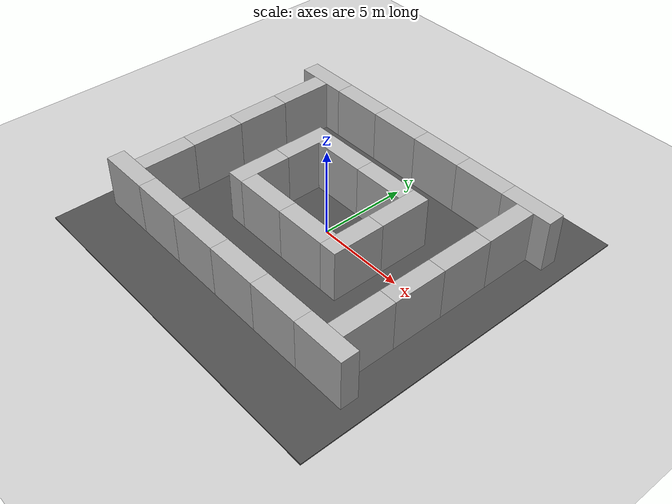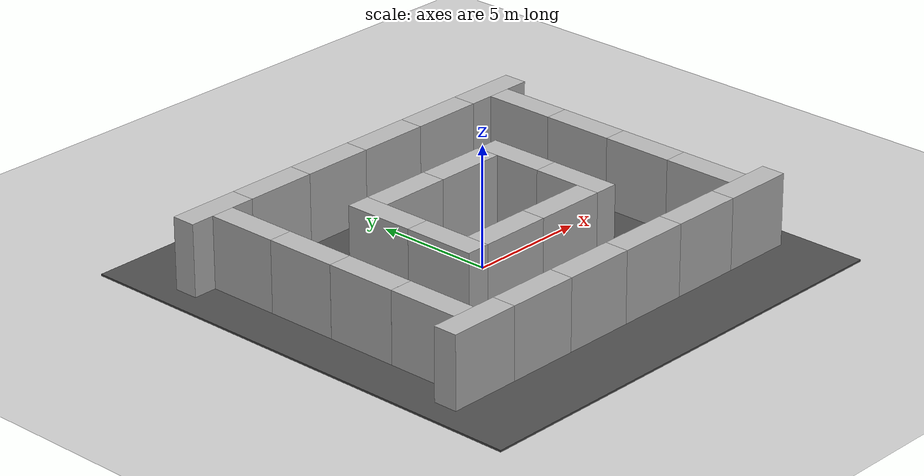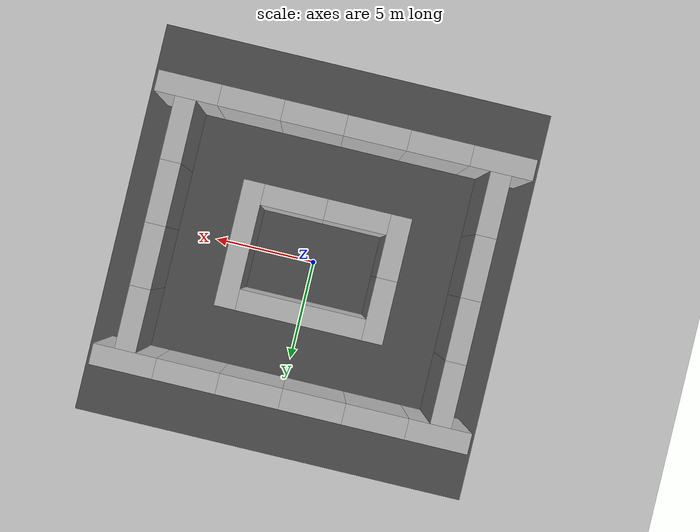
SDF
<sdf version="1.6">
 <world name="default">
  <model name="ground_plane">
   <static>1</static>
   <link name="link">
    <collision name="collision">
     <geometry><plane><normal>0 0 1</normal><size>100 100</size></plane></geometry>
     <surface><friction><ode><mu>100</mu><mu2>50</mu2></ode></friction></surface>
    </collision>
    <visual name="visual">
     <cast_shadows>0</cast_shadows>
     <geometry><plane><normal>0 0 1</normal><size>100 100</size></plane></geometry>
     <material>
      <script><uri>file://media/materials/scripts/gazebo.material</uri><name>Gazebo/Grey</name></script>
     </material>
    </visual>
    <velocity_decay><linear>0</linear><angular>0</angular></velocity_decay>
   </link>
  </model>
  <model name="asphalt_plane">
   <static>1</static>
   <link name="link">
    <collision name="collision"><geometry><box><size>20 20 0.1</size></box></geometry></collision>
    <visual name="visual">
     <cast_shadows>0</cast_shadows>
     <geometry><box><size>20 20 0.1</size></box></geometry>
     <material>
      <script>
       <uri>model://asphalt_plane/materials/scripts</uri>
       <uri>model://asphalt_plane/materials/textures</uri>
       <name>vrc/asphalt</name>
      </script>
     </material>
    </visual>
    <velocity_decay><linear>0</linear><angular>0</angular></velocity_decay>
   </link>
  </model>
  <model name="brick_box_3x1x3">
   <static>1</static>
   <link name="chassis">
    <pose>0 0 1.5 0 -0 0</pose>
    <collision name="collision"><geometry><box><size>3 1 3</size></box></geometry></collision>
    <visual name="visual">
     <geometry><mesh><uri>model://brick_box_3x1x3/meshes/simple_box.dae</uri><scale>3 1 3</scale></mesh></geometry>
     <material>
      <script>
       <uri>model://brick_box_3x1x3/materials/scripts</uri>
       <uri>model://brick_box_3x1x3/materials/textures</uri>
       <name>BrickBox/Diffuse</name>
      </script>
     </material>
    </visual>
   </link>
   <pose>3.5 1.5 0 0 -0 1.5708</pose>
  </model>
  <model name="brick_box_3x1x3_0">
   <static>1</static>
   <link name="chassis">
    <pose>0 0 1.5 0 -0 0</pose>
    <collision name="collision"><geometry><box><size>3 1 3</size></box></geometry></collision>
    <visual name="visual">
     <geometry><mesh><uri>model://brick_box_3x1x3/meshes/simple_box.dae</uri><scale>3 1 3</scale></mesh></geometry>
     <material>
      <script>
       <uri>model://brick_box_3x1x3/materials/scripts</uri>
       <uri>model://brick_box_3x1x3/materials/textures</uri>
       <name>BrickBox/Diffuse</name>
      </script>
     </material>
    </visual>
   </link>
   <pose>3.5 -1.5 0 0 -0 1.5708</pose>
  </model>
  <model name="brick_box_3x1x3_1">
   <static>1</static>
   <link name="chassis">
    <pose>0 0 1.5 0 -0 0</pose>
    <collision name="collision"><geometry><box><size>3 1 3</size></box></geometry></collision>
    <visual name="visual">
     <geometry><mesh><uri>model://brick_box_3x1x3/meshes/simple_box.dae</uri><scale>3 1 3</scale></mesh></geometry>
     <material>
      <script>
       <uri>model://brick_box_3x1x3/materials/scripts</uri>
       <uri>model://brick_box_3x1x3/materials/textures</uri>
       <name>BrickBox/Diffuse</name>
      </script>
     </material>
    </visual>
   </link>
   <pose>1.5 -2.5 0 0 -0 0</pose>
  </model>
  <model name="brick_box_3x1x3_2">
   <static>1</static>
   <link name="chassis">
    <pose>0 0 1.5 0 -0 0</pose>
    <collision name="collision"><geometry><box><size>3 1 3</size></box></geometry></collision>
    <visual name="visual">
     <geometry><mesh><uri>model://brick_box_3x1x3/meshes/simple_box.dae</uri><scale>3 1 3</scale></mesh></geometry>
     <material>
      <script>
       <uri>model://brick_box_3x1x3/materials/scripts</uri>
       <uri>model://brick_box_3x1x3/materials/textures</uri>
       <name>BrickBox/Diffuse</name>
      </script>
     </material>
    </visual>
   </link>
   <pose>-1.5 -2.5 0 0 -0 0</pose>
  </model>
  <model name="brick_box_3x1x3_3">
   <static>1</static>
   <link name="chassis">
    <pose>0 0 1.5 0 -0 0</pose>
    <collision name="collision"><geometry><box><size>3 1 3</size></box></geometry></collision>
    <visual name="visual">
     <geometry><mesh><uri>model://brick_box_3x1x3/meshes/simple_box.dae</uri><scale>3 1 3</scale></mesh></geometry>
     <material>
      <script>
       <uri>model://brick_box_3x1x3/materials/scripts</uri>
       <uri>model://brick_box_3x1x3/materials/textures</uri>
       <name>BrickBox/Diffuse</name>
      </script>
     </material>
    </visual>
   </link>
   <pose>-3.5 -1.5 0 0 -0 1.5708</pose>
  </model>
  <model name="brick_box_3x1x3_4">
   <static>1</static>
   <link name="chassis">
    <pose>0 0 1.5 0 -0 0</pose>
    <collision name="collision"><geometry><box><size>3 1 3</size></box></geometry></collision>
    <visual name="visual">
     <geometry><mesh><uri>model://brick_box_3x1x3/meshes/simple_box.dae</uri><scale>3 1 3</scale></mesh></geometry>
     <material>
      <script>
       <uri>model://brick_box_3x1x3/materials/scripts</uri>
       <uri>model://brick_box_3x1x3/materials/textures</uri>
       <name>BrickBox/Diffuse</name>
      </script>
     </material>
    </visual>
   </link>
   <pose>-3.5 1.5 0 0 -0 1.5708</pose>
  </model>
  <model name="brick_box_3x1x3_5">
   <static>1</static>
   <link name="chassis">
    <pose>0 0 1.5 0 -0 0</pose>
    <collision name="collision"><geometry><box><size>3 1 3</size></box></geometry></collision>
    <visual name="visual">
     <geometry><mesh><uri>model://brick_box_3x1x3/meshes/simple_box.dae</uri><scale>3 1 3</scale></mesh></geometry>
     <material>
      <script>
       <uri>model://brick_box_3x1x3/materials/scripts</uri>
       <uri>model://brick_box_3x1x3/materials/textures</uri>
       <name>BrickBox/Diffuse</name>
      </script>
     </material>
    </visual>
   </link>
   <pose>-1.5 2.5 0 0 -0 0</pose>
  </model>
  <model name="brick_box_3x1x3_6">
   <static>1</static>
   <link name="chassis">
    <pose>0 0 1.5 0 -0 0</pose>
    <collision name="collision"><geometry><box><size>3 1 3</size></box></geometry></collision>
    <visual name="visual">
     <geometry><mesh><uri>model://brick_box_3x1x3/meshes/simple_box.dae</uri><scale>3 1 3</scale></mesh></geometry>
     <material>
      <script>
       <uri>model://brick_box_3x1x3/materials/scripts</uri>
       <uri>model://brick_box_3x1x3/materials/textures</uri>
       <name>BrickBox/Diffuse</name>
      </script>
     </material>
    </visual>
   </link>
   <pose>1.5 2.5 0 0 -0 0</pose>
  </model>
  <model name="brick_box_3x1x3_7">
   <static>1</static>
   <link name="chassis">
    <pose>0 0 1.5 0 -0 0</pose>
    <collision name="collision"><geometry><box><size>3 1 3</size></box></geometry></collision>
    <visual name="visual">
     <geometry><mesh><uri>model://brick_box_3x1x3/meshes/simple_box.dae</uri><scale>3 1 3</scale></mesh></geometry>
     <material>
      <script>
       <uri>model://brick_box_3x1x3/materials/scripts</uri>
       <uri>model://brick_box_3x1x3/materials/textures</uri>
       <name>BrickBox/Diffuse</name>
      </script>
     </material>
    </visual>
   </link>
   <pose>7.5 4.5 0 0 -0 1.5708</pose>
  </model>
  <model name="brick_box_3x1x3_8">
   <static>1</static>
   <link name="chassis">
    <pose>0 0 1.5 0 -0 0</pose>
    <collision name="collision"><geometry><box><size>3 1 3</size></box></geometry></collision>
    <visual name="visual">
     <geometry><mesh><uri>model://brick_box_3x1x3/meshes/simple_box.dae</uri><scale>3 1 3</scale></mesh></geometry>
     <material>
      <script>
       <uri>model://brick_box_3x1x3/materials/scripts</uri>
       <uri>model://brick_box_3x1x3/materials/textures</uri>
       <name>BrickBox/Diffuse</name>
      </script>
     </material>
    </visual>
   </link>
   <pose>7.5 1.5 0 0 -0 1.5708</pose>
  </model>
  <model name="brick_box_3x1x3_9">
   <static>1</static>
   <link name="chassis">
    <pose>0 0 1.5 0 -0 0</pose>
    <collision name="collision"><geometry><box><size>3 1 3</size></box></geometry></collision>
    <visual name="visual">
     <geometry><mesh><uri>model://brick_box_3x1x3/meshes/simple_box.dae</uri><scale>3 1 3</scale></mesh></geometry>
     <material>
      <script>
       <uri>model://brick_box_3x1x3/materials/scripts</uri>
       <uri>model://brick_box_3x1x3/materials/textures</uri>
       <name>BrickBox/Diffuse</name>
      </script>
     </material>
    </visual>
   </link>
   <pose>7.5 -1.5 0 0 -0 1.5708</pose>
  </model>
  <model name="brick_box_3x1x3_10">
   <static>1</static>
   <link name="chassis">
    <pose>0 0 1.5 0 -0 0</pose>
    <collision name="collision"><geometry><box><size>3 1 3</size></box></geometry></collision>
    <visual name="visual">
     <geometry><mesh><uri>model://brick_box_3x1x3/meshes/simple_box.dae</uri><scale>3 1 3</scale></mesh></geometry>
     <material>
      <script>
       <uri>model://brick_box_3x1x3/materials/scripts</uri>
       <uri>model://brick_box_3x1x3/materials/textures</uri>
       <name>BrickBox/Diffuse</name>
      </script>
     </material>
    </visual>
   </link>
   <pose>7.5 -4.5 0 0 -0 1.5708</pose>
  </model>
  <model name="brick_box_3x1x3_11">
   <static>1</static>
   <link name="chassis">
    <pose>0 0 1.5 0 -0 0</pose>
    <collision name="collision"><geometry><box><size>3 1 3</size></box></geometry></collision>
    <visual name="visual">
     <geometry><mesh><uri>model://brick_box_3x1x3/meshes/simple_box.dae</uri><scale>3 1 3</scale></mesh></geometry>
     <material>
      <script>
       <uri>model://brick_box_3x1x3/materials/scripts</uri>
       <uri>model://brick_box_3x1x3/materials/textures</uri>
       <name>BrickBox/Diffuse</name>
      </script>
     </material>
    </visual>
   </link>
   <pose>7.5 -6.5 0 0 -0 0</pose>
  </model>
  <model name="brick_box_3x1x3_12">
   <static>1</static>
   <link name="chassis">
    <pose>0 0 1.5 0 -0 0</pose>
    <collision name="collision"><geometry><box><size>3 1 3</size></box></geometry></collision>
    <visual name="visual">
     <geometry><mesh><uri>model://brick_box_3x1x3/meshes/simple_box.dae</uri><scale>3 1 3</scale></mesh></geometry>
     <material>
      <script>
       <uri>model://brick_box_3x1x3/materials/scripts</uri>
       <uri>model://brick_box_3x1x3/materials/textures</uri>
       <name>BrickBox/Diffuse</name>
      </script>
     </material>
    </visual>
   </link>
   <pose>4.5 -6.5 0 0 -0 0</pose>
  </model>
  <model name="brick_box_3x1x3_13">
   <static>1</static>
   <link name="chassis">
    <pose>0 0 1.5 0 -0 0</pose>
    <collision name="collision"><geometry><box><size>3 1 3</size></box></geometry></collision>
    <visual name="visual">
     <geometry><mesh><uri>model://brick_box_3x1x3/meshes/simple_box.dae</uri><scale>3 1 3</scale></mesh></geometry>
     <material>
      <script>
       <uri>model://brick_box_3x1x3/materials/scripts</uri>
       <uri>model://brick_box_3x1x3/materials/textures</uri>
       <name>BrickBox/Diffuse</name>
      </script>
     </material>
    </visual>
   </link>
   <pose>1.5 -6.5 0 0 -0 0</pose>
  </model>
  <model name="brick_box_3x1x3_14">
   <static>1</static>
   <link name="chassis">
    <pose>0 0 1.5 0 -0 0</pose>
    <collision name="collision"><geometry><box><size>3 1 3</size></box></geometry></collision>
    <visual name="visual">
     <geometry><mesh><uri>model://brick_box_3x1x3/meshes/simple_box.dae</uri><scale>3 1 3</scale></mesh></geometry>
     <material>
      <script>
       <uri>model://brick_box_3x1x3/materials/scripts</uri>
       <uri>model://brick_box_3x1x3/materials/textures</uri>
       <name>BrickBox/Diffuse</name>
      </script>
     </material>
    </visual>
   </link>
   <pose>-1.5 -6.5 0 0 -0 0</pose>
  </model>
  <model name="brick_box_3x1x3_15">
   <static>1</static>
   <link name="chassis">
    <pose>0 0 1.5 0 -0 0</pose>
    <collision name="collision"><geometry><box><size>3 1 3</size></box></geometry></collision>
    <visual name="visual">
     <geometry><mesh><uri>model://brick_box_3x1x3/meshes/simple_box.dae</uri><scale>3 1 3</scale></mesh></geometry>
     <material>
      <script>
       <uri>model://brick_box_3x1x3/materials/scripts</uri>
       <uri>model://brick_box_3x1x3/materials/textures</uri>
       <name>BrickBox/Diffuse</name>
      </script>
     </material>
    </visual>
   </link>
   <pose>-4.5 -6.5 0 0 -0 0</pose>
  </model>
  <model name="brick_box_3x1x3_16">
   <static>1</static>
   <link name="chassis">
    <pose>0 0 1.5 0 -0 0</pose>
    <collision name="collision"><geometry><box><size>3 1 3</size></box></geometry></collision>
    <visual name="visual">
     <geometry><mesh><uri>model://brick_box_3x1x3/meshes/simple_box.dae</uri><scale>3 1 3</scale></mesh></geometry>
     <material>
      <script>
       <uri>model://brick_box_3x1x3/materials/scripts</uri>
       <uri>model://brick_box_3x1x3/materials/textures</uri>
       <name>BrickBox/Diffuse</name>
      </script>
     </material>
    </visual>
   </link>
   <pose>-7.5 -6.5 0 0 -0 0</pose>
  </model>
  <model name="brick_box_3x1x3_17">
   <static>1</static>
   <link name="chassis">
    <pose>0 0 1.5 0 -0 0</pose>
    <collision name="collision"><geometry><box><size>3 1 3</size></box></geometry></collision>
    <visual name="visual">
     <geometry><mesh><uri>model://brick_box_3x1x3/meshes/simple_box.dae</uri><scale>3 1 3</scale></mesh></geometry>
     <material>
      <script>
       <uri>model://brick_box_3x1x3/materials/scripts</uri>
       <uri>model://brick_box_3x1x3/materials/textures</uri>
       <name>BrickBox/Diffuse</name>
      </script>
     </material>
    </visual>
   </link>
   <pose>-7.5 -4.5 0 0 -0 1.5708</pose>
  </model>
  <model name="brick_box_3x1x3_18">
   <static>1</static>
   <link name="chassis">
    <pose>0 0 1.5 0 -0 0</pose>
    <collision name="collision"><geometry><box><size>3 1 3</size></box></geometry></collision>
    <visual name="visual">
     <geometry><mesh><uri>model://brick_box_3x1x3/meshes/simple_box.dae</uri><scale>3 1 3</scale></mesh></geometry>
     <material>
      <script>
       <uri>model://brick_box_3x1x3/materials/scripts</uri>
       <uri>model://brick_box_3x1x3/materials/textures</uri>
       <name>BrickBox/Diffuse</name>
      </script>
     </material>
    </visual>
   </link>
   <pose>-7.5 -1.5 -0 0 -0 1.57008</pose>
  </model>
  <model name="brick_box_3x1x3_19">
   <static>1</static>
   <link name="chassis">
    <pose>0 0 1.5 0 -0 0</pose>
    <collision name="collision"><geometry><box><size>3 1 3</size></box></geometry></collision>
    <visual name="visual">
     <geometry><mesh><uri>model://brick_box_3x1x3/meshes/simple_box.dae</uri><scale>3 1 3</scale></mesh></geometry>
     <material>
      <script>
       <uri>model://brick_box_3x1x3/materials/scripts</uri>
       <uri>model://brick_box_3x1x3/materials/textures</uri>
       <name>BrickBox/Diffuse</name>
      </script>
     </material>
    </visual>
   </link>
   <pose>-7.5 1.5 0 0 -0 1.5708</pose>
  </model>
  <model name="brick_box_3x1x3_20">
   <static>1</static>
   <link name="chassis">
    <pose>0 0 1.5 0 -0 0</pose>
    <collision name="collision"><geometry><box><size>3 1 3</size></box></geometry></collision>
    <visual name="visual">
     <geometry><mesh><uri>model://brick_box_3x1x3/meshes/simple_box.dae</uri><scale>3 1 3</scale></mesh></geometry>
     <material>
      <script>
       <uri>model://brick_box_3x1x3/materials/scripts</uri>
       <uri>model://brick_box_3x1x3/materials/textures</uri>
       <name>BrickBox/Diffuse</name>
      </script>
     </material>
    </visual>
   </link>
   <pose>-7.5 4.5 0 0 -0 1.5708</pose>
  </model>
  <model name="brick_box_3x1x3_21">
   <static>1</static>
   <link name="chassis">
    <pose>0 0 1.5 0 -0 0</pose>
    <collision name="collision"><geometry><box><size>3 1 3</size></box></geometry></collision>
    <visual name="visual">
     <geometry><mesh><uri>model://brick_box_3x1x3/meshes/simple_box.dae</uri><scale>3 1 3</scale></mesh></geometry>
     <material>
      <script>
       <uri>model://brick_box_3x1x3/materials/scripts</uri>
       <uri>model://brick_box_3x1x3/materials/textures</uri>
       <name>BrickBox/Diffuse</name>
      </script>
     </material>
    </visual>
   </link>
   <pose>-7.5 6.5 0 0 -0 0</pose>
  </model>
  <model name="brick_box_3x1x3_22">
   <static>1</static>
   <link name="chassis">
    <pose>0 0 1.5 0 -0 0</pose>
    <collision name="collision"><geometry><box><size>3 1 3</size></box></geometry></collision>
    <visual name="visual">
     <geometry><mesh><uri>model://brick_box_3x1x3/meshes/simple_box.dae</uri><scale>3 1 3</scale></mesh></geometry>
     <material>
      <script>
       <uri>model://brick_box_3x1x3/materials/scripts</uri>
       <uri>model://brick_box_3x1x3/materials/textures</uri>
       <name>BrickBox/Diffuse</name>
      </script>
     </material>
    </visual>
   </link>
   <pose>-4.5 6.5 0 0 -0 0</pose>
  </model>
  <model name="brick_box_3x1x3_23">
   <static>1</static>
   <link name="chassis">
    <pose>0 0 1.5 0 -0 0</pose>
    <collision name="collision"><geometry><box><size>3 1 3</size></box></geometry></collision>
    <visual name="visual">
     <geometry><mesh><uri>model://brick_box_3x1x3/meshes/simple_box.dae</uri><scale>3 1 3</scale></mesh></geometry>
     <material>
      <script>
       <uri>model://brick_box_3x1x3/materials/scripts</uri>
       <uri>model://brick_box_3x1x3/materials/textures</uri>
       <name>BrickBox/Diffuse</name>
      </script>
     </material>
    </visual>
   </link>
   <pose>-1.5 6.5 0 0 -0 0</pose>
  </model>
  <model name="brick_box_3x1x3_24">
   <static>1</static>
   <link name="chassis">
    <pose>0 0 1.5 0 -0 0</pose>
    <collision name="collision"><geometry><box><size>3 1 3</size></box></geometry></collision>
    <visual name="visual">
     <geometry><mesh><uri>model://brick_box_3x1x3/meshes/simple_box.dae</uri><scale>3 1 3</scale></mesh></geometry>
     <material>
      <script>
       <uri>model://brick_box_3x1x3/materials/scripts</uri>
       <uri>model://brick_box_3x1x3/materials/textures</uri>
       <name>BrickBox/Diffuse</name>
      </script>
     </material>
    </visual>
   </link>
   <pose>1.5 6.5 0 0 -0 0</pose>
  </model>
  <model name="brick_box_3x1x3_25">
   <static>1</static>
   <link name="chassis">
    <pose>0 0 1.5 0 -0 0</pose>
    <collision name="collision"><geometry><box><size>3 1 3</size></box></geometry></collision>
    <visual name="visual">
     <geometry><mesh><uri>model://brick_box_3x1x3/meshes/simple_box.dae</uri><scale>3 1 3</scale></mesh></geometry>
     <material>
      <script>
       <uri>model://brick_box_3x1x3/materials/scripts</uri>
       <uri>model://brick_box_3x1x3/materials/textures</uri>
       <name>BrickBox/Diffuse</name>
      </script>
     </material>
    </visual>
   </link>
   <pose>4.5 6.5 0 0 -0 0</pose>
  </model>
  <model name="brick_box_3x1x3_26">
   <static>1</static>
   <link name="chassis">
    <pose>0 0 1.5 0 -0 0</pose>
    <collision name="collision"><geometry><box><size>3 1 3</size></box></geometry></collision>
    <visual name="visual">
     <geometry><mesh><uri>model://brick_box_3x1x3/meshes/simple_box.dae</uri><scale>3 1 3</scale></mesh></geometry>
     <material>
      <script>
       <uri>model://brick_box_3x1x3/materials/scripts</uri>
       <uri>model://brick_box_3x1x3/materials/textures</uri>
       <name>BrickBox/Diffuse</name>
      </script>
     </material>
    </visual>
   </link>
   <pose>7.5 6.5 0 0 -0 0</pose>
  </model>
 </world>
</sdf>
